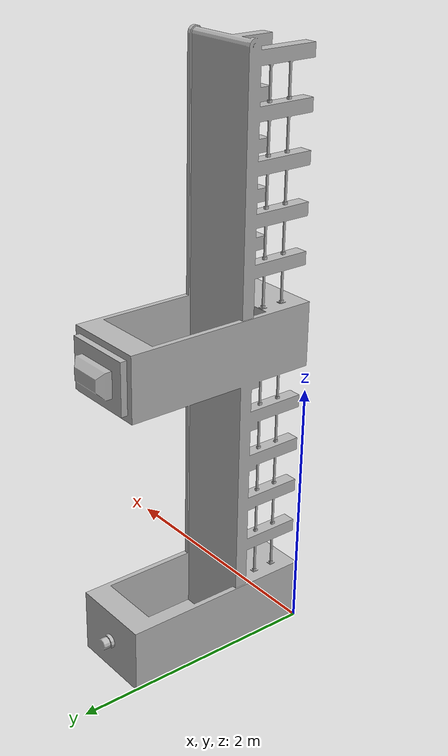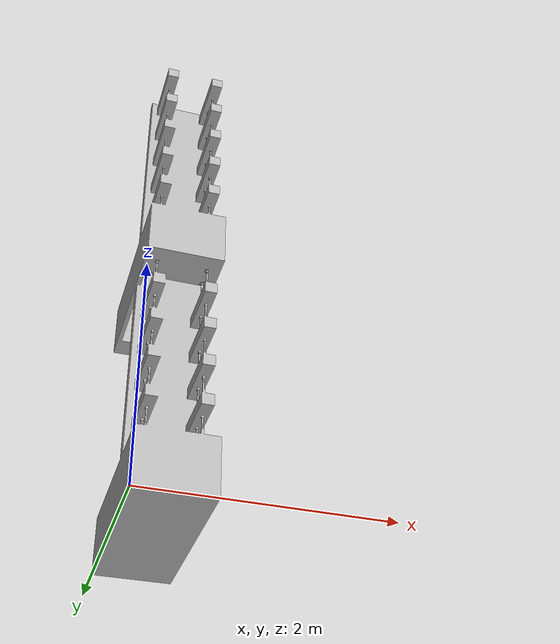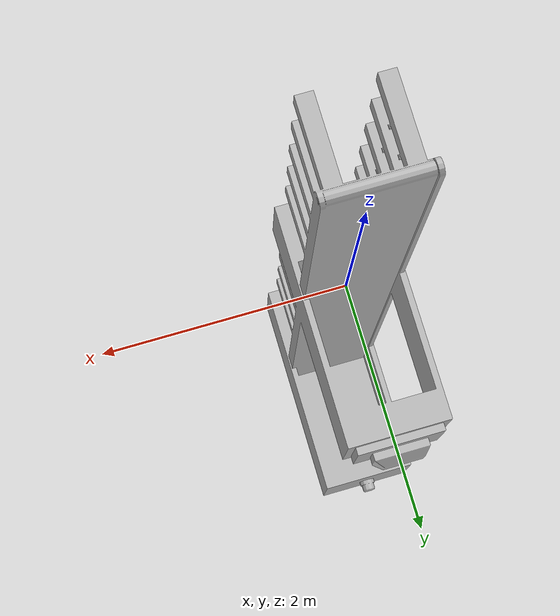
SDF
<?xml version="1.0" ?>
<sdf version="1.6">
  <model name="assembly_line">
    <static>true</static>
    <link name="link">
      <collision name="collision">
        <geometry>
          <mesh>
            <scale>0.001 0.001 0.001</scale>
            <uri>model://assembly_line/meshes/assembly_line.STL</uri>
          </mesh>
        </geometry>
      </collision>
      <visual name="visual">
        <geometry>
          <mesh>
            <scale>0.001 0.001 0.001</scale>
            <uri>model://assembly_line/meshes/assembly_line.STL</uri>
          </mesh>
        </geometry>
      </visual>
    </link>
  </model>
</sdf>
